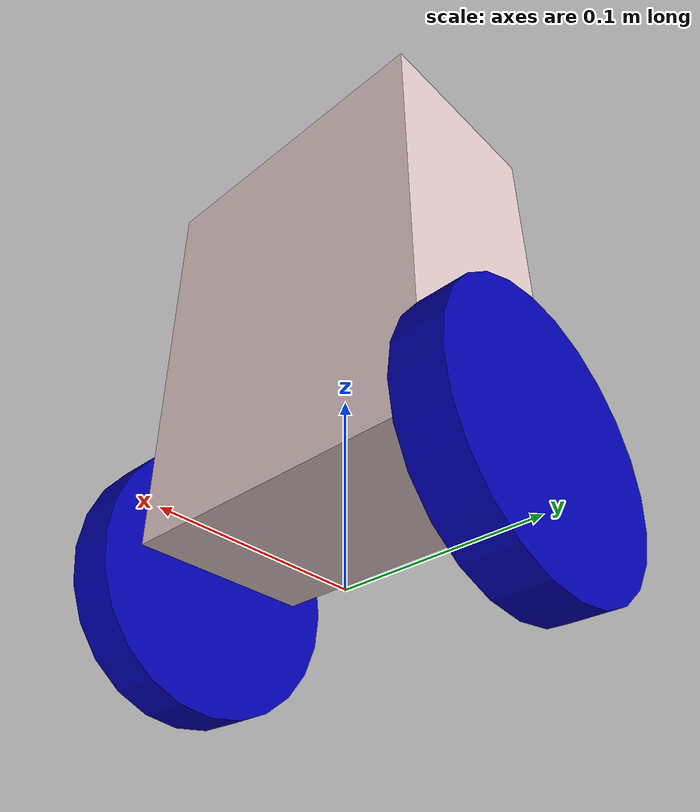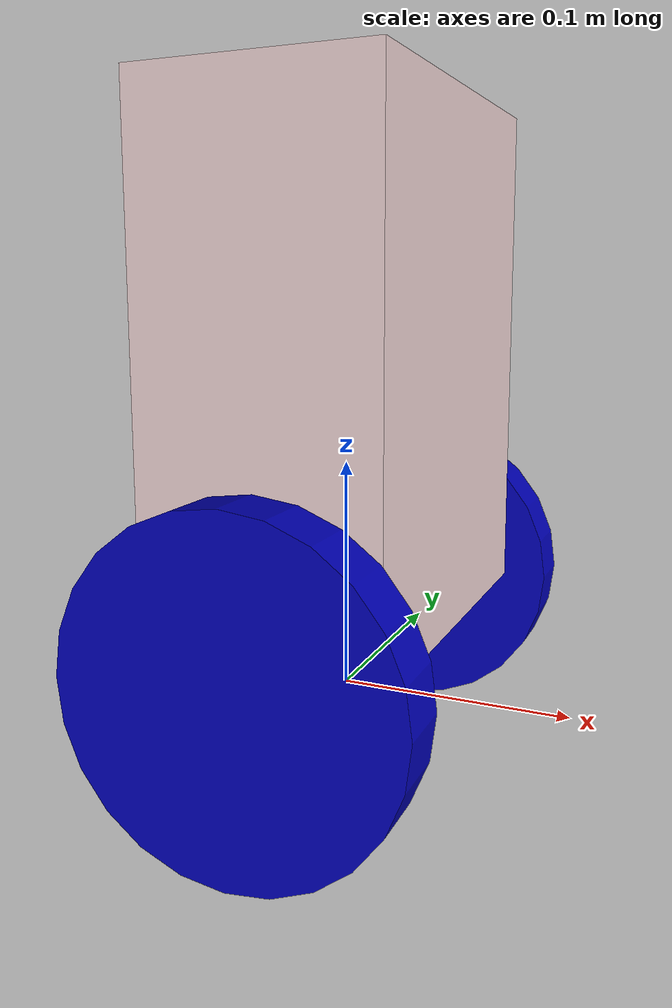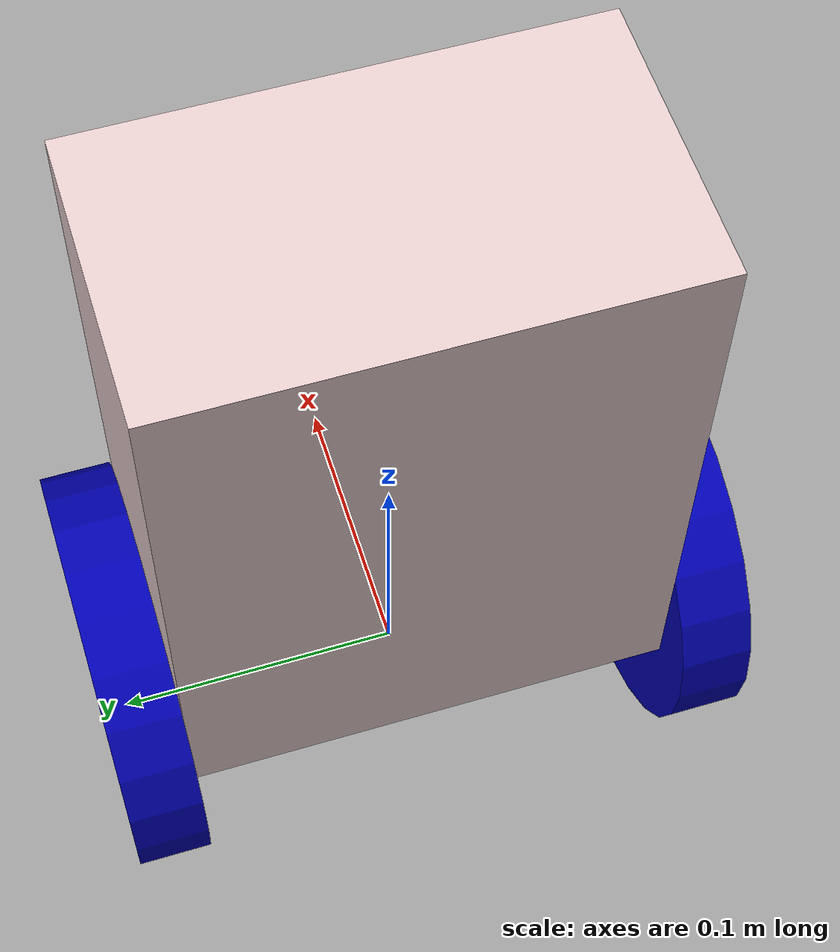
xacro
<?xml version="1.0"?>
<robot xmlns:xacro="http://www.ros.org/wiki/xacro">
<xacro:include filename="inertial_macros.xacro" />

<!--materials-->

<material name="Blue">
    <color rgba="0 0 0.7 1" />
</material>
<material name="Green">
    <color rgba="0 0.7 0.2 1" />
</material>
<material name="Red">
    <color rgba="0.7 0.1 0.1 1" />
</material>
<material name="Grey">
    <color rgba="0.5 0.5 0.5 1" />
</material>
<material name="White">
    <color rgba="0.9 0.8 0.8 1" />
</material>
<material name="Black">
    <color rgba="0 0 0 1" />
</material>

<!--link and joints-->
<!--        pour ce projet base_link = chassis       -->

<link name="base_footprint"></link>
<joint name="base_footprin_joint" type="fixed">
    <parent link="base_footprint"/>
    <child link="base_link"/>
    <origin xyz="0 0 0.1425" rpy="0 0 0" />
</joint>

<!--base_link-->

<link name="base_link">
    <visual>
        <origin xyz="0 0 0" rpy="0 0 0" />
        <geometry>
            <box size="0.1 0.17 0.22" />
        </geometry>
        <material name="White">
        </material>
    </visual>
    <collision>
        <origin xyz="0 0 0" rpy="0 0 0" />
        <geometry>
            <box size="0.1 0.17 0.22" />
        </geometry>
    </collision>

    <xacro:inertial_box mass="1.0" x="0.1" y="0.17" z="0.22" >
        <origin xyz="0 0 0" rpy="0 0 0" />
    </xacro:inertial_box>
</link>
<gazebo reference="base_link">
  <material>Gazebo/Red</material>
</gazebo>

<!--            wheels           -->

<!--Right_Wheel_link-->
<link name="RightWheel_link">
    <visual>
        <origin xyz="0 0 0" rpy="1.57 0 0" />
        <geometry>
            <cylinder radius="0.07" length="0.025" />
        </geometry>
        <material name="Blue">
        </material>
    </visual>
    <collision>
        <origin xyz="0 0 0" rpy="1.57 0 0" />
        <geometry>
            <cylinder radius="0.07" length="0.025" />
        </geometry>
    </collision>

    <xacro:inertial_cylinder mass="0.5" radius="0.07" length="0.025" >
        <origin xyz="0 0 0" rpy="0 0 0" />
    </xacro:inertial_cylinder>
</link>
<gazebo reference="RightWheel_link">
  <material>Gazebo/Green</material>
  <mu1>1.0</mu1>
  <mu2>1.0</mu2>
</gazebo>

<!--Right_Wheel_joint-->
<joint name="base_Rwheel_joint" type="continuous">
    <parent link="base_link" />
    <child link="RightWheel_link" />
    <origin xyz="0 -0.0975 -0.11" rpy="0 0 0" />
    <axis xyz="0 1 0" />
    <dynamics damping="0.5" friction="0.01"/> <!--hadi friction t3 joint ( tsma moteur mchi les roues )-->
    <limit effort="50.0" velocity="20.0"/>
</joint>

<!--Left_Wheel_link-->
<link name="LeftWheel_link">
    <visual>
        <origin xyz="0 0 0" rpy="1.57 0 0" />
        <geometry>
            <cylinder radius="0.07" length="0.025" />
        </geometry>
        <material name="Blue">
        </material>
    </visual>
    <collision>
        <origin xyz="0 0 0" rpy="1.57 0 0" />
        <geometry>
            <cylinder radius="0.07" length="0.025" />
        </geometry>
    </collision>

    <xacro:inertial_cylinder mass="0.5" radius="0.07" length="0.025" >
        <origin xyz="0 0 0" rpy="0 0 0" />
    </xacro:inertial_cylinder>
</link>
<gazebo reference="LeftWheel_link">
  <material>Gazebo/Green</material>
  <mu1>1.0</mu1>
  <mu2>1.0</mu2>
</gazebo>

<!--Right_Wheel_joint-->
<joint name="base_Lwheel_joint" type="continuous">
    <parent link="base_link" />
    <child link="LeftWheel_link" />
    <origin xyz="0 0.0975 -0.11" rpy="0 0 0" />
    <axis xyz="0 1 0" />
    <dynamics damping="0.5" friction="0.01"/>
    <limit effort="50.0" velocity="20.0"/>
</joint>

</robot>
